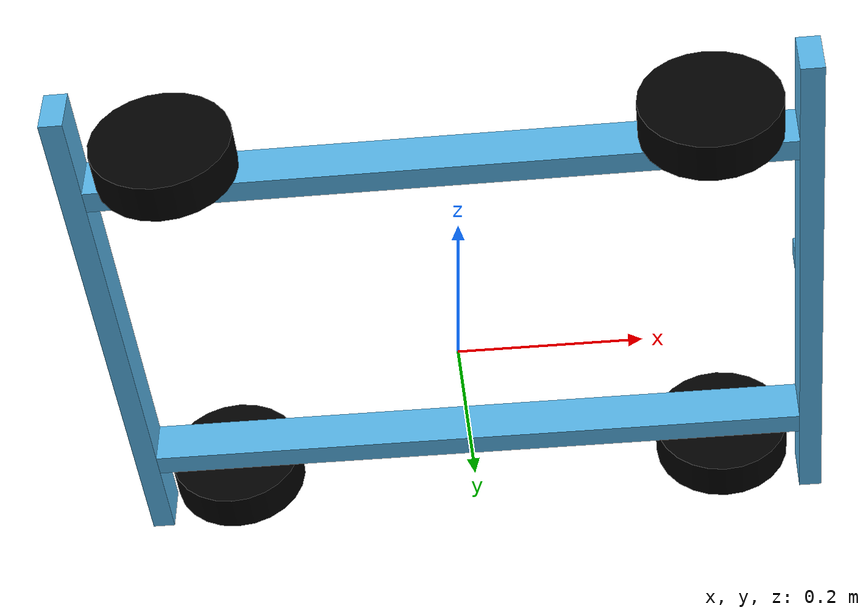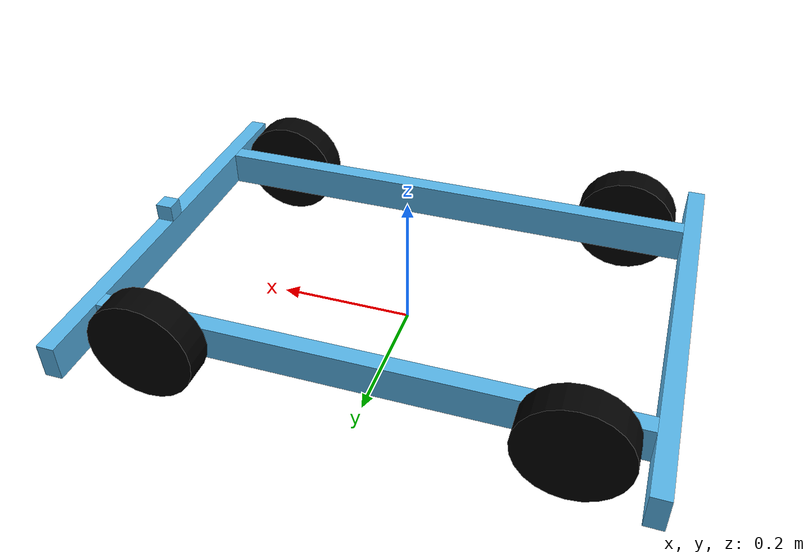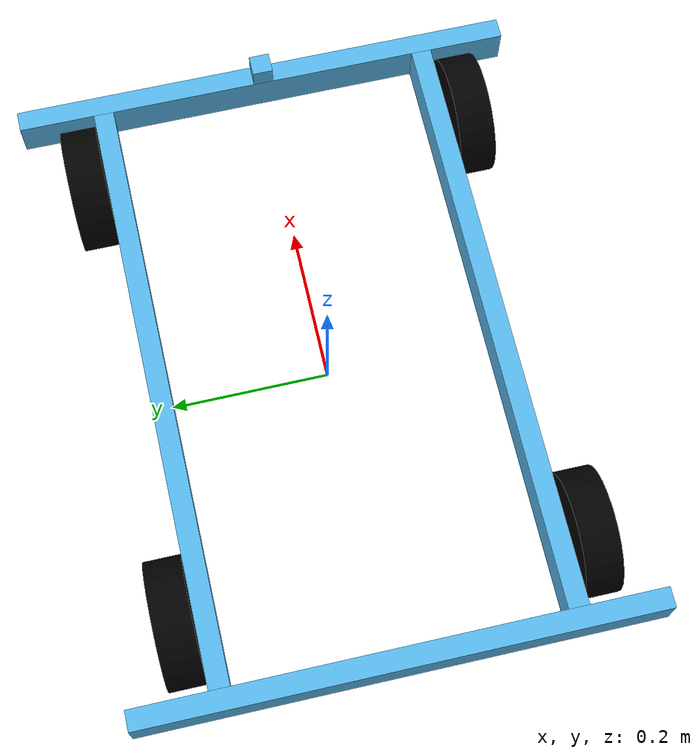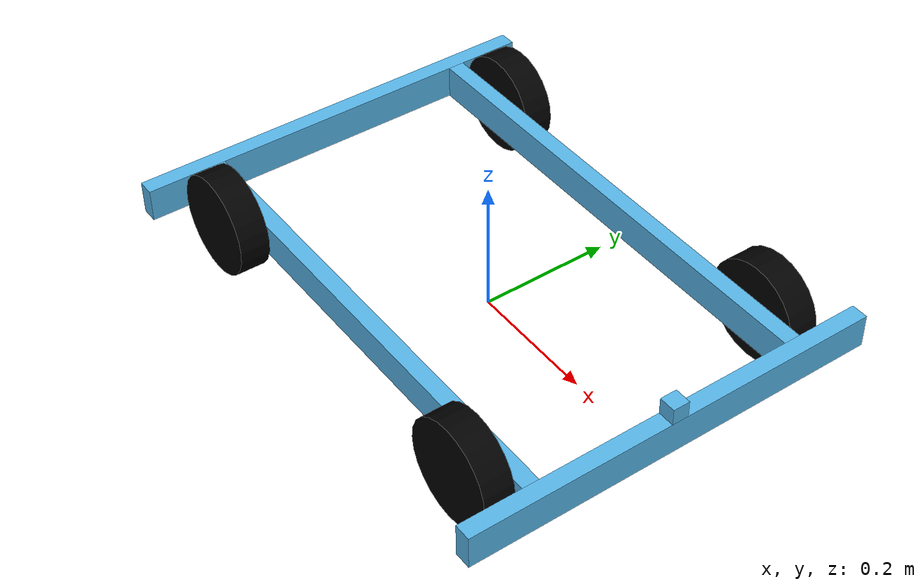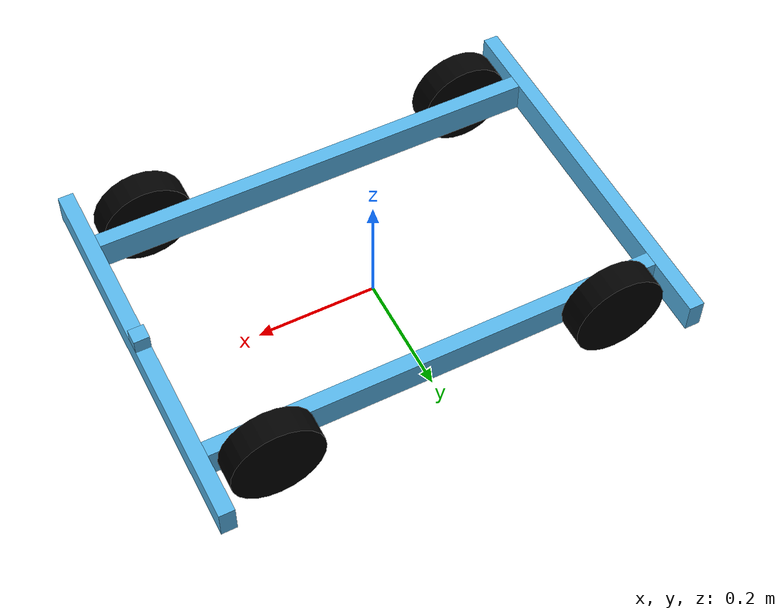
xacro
<?xml version="1.0"?>
<robot name="robot" xmlns:xacro="http://www.ros.org/wiki/xacro">

  <!-- Load simulated or real hardware interfaces -->
  <xacro:arg name="is_sim" default="true"/>

  <!-- Include Gazebo parameters -->
  <xacro:include filename="$(find robomagellan_description)/urdf/gazebo.xacro"/>

  <!-- Include ros2_contol plugins/interfaces -->
  <xacro:include filename="$(find robomagellan_description)/urdf/ros2_control.xacro"/>

  <!-- Inertial Macros -->
  <xacro:macro name="inertial_box" params="mass x y z">
    <inertial>
      <mass value="${mass}"/>
      <inertia ixx="${(1/12) * mass * (y*y+z*z)}" ixy="0.0" ixz="0.0"
               iyy="${(1/12) * mass * (x*x+z*z)}" iyz="0.0"
               izz="${(1/12) * mass * (x*x+y*y)}"/>
    </inertial>
  </xacro:macro>

  <!-- Wheels are rotated 90 degrees about x-axis -->
  <xacro:macro name="inertial_cylinder" params="mass radius height">
    <inertial>
      <mass value="${mass}"/>
      <inertia ixx="${(1/12) * mass * (3*radius*radius + height*height)}" ixy="0.0" ixz="0.0"
               iyy="${(1/2) * mass * (radius*radius)}" iyz="0.0"
               izz="${(1/12) * mass * (3*radius*radius + height*height)}"/>
    </inertial>
  </xacro:macro>

  <xacro:property name="sidebar_length" value="0.7493"/>
  <xacro:property name="sidebar_width" value="0.0254"/>
  <xacro:property name="sidebar_height" value="0.0508"/>
  <xacro:property name="sidebar_y_offset" value="0.20955"/>

  <xacro:property name="frontbar_length" value="0.635"/>
  <xacro:property name="frontbar_width" value="0.0254"/>
  <xacro:property name="frontbar_height" value="0.0508"/>
  <xacro:property name="frontbar_x_offset" value="0.38735"/>

  <xacro:property name="wheel_radius" value="0.0762"/>
  <xacro:property name="wheel_width" value="0.045085"/>
  <xacro:property name="wheel_mass" value="0.36196671"/>
  <xacro:property name="wheel_x_offset" value="0.28575"/>
  <xacro:property name="wheel_y_offset" value="0.2447925"/>

  <xacro:property name="robot_mass" value="1.0"/>

  <!-- Macro to create the side bars -->
  <xacro:macro name="sidebar" params="prefix reflect">
    <visual name="${prefix}_side_visual">
      <origin xyz="0 ${sidebar_y_offset*reflect} 0" rpy="0 0 0"/>
      <geometry>
        <box size="${sidebar_length} ${sidebar_width} ${sidebar_height}"/>
      </geometry>
    </visual>
    <collision name="${prefix}_side_collision">
      <origin xyz="0 ${sidebar_y_offset*reflect} 0" rpy="0 0 0"/>
      <geometry>
        <box size="${sidebar_length} ${sidebar_width} ${sidebar_height}"/>
      </geometry>
    </collision>
  </xacro:macro>

  <!-- Macro to create the front/rear bars -->
  <xacro:macro name="frontbar" params="prefix reflect">
    <visual name="${prefix}_visual">
      <origin xyz="${frontbar_x_offset*reflect} 0 0" rpy="0 0 1.5708"/>
      <geometry>
        <box size="${frontbar_length} ${frontbar_width} ${frontbar_height}"/>
      </geometry>
    </visual>
    <collision name="${prefix}_collision">
      <origin xyz="${frontbar_x_offset*reflect} 0 0" rpy="0 0 1.5708"/>
      <geometry>
        <box size="${frontbar_length} ${frontbar_width} ${frontbar_height}"/>
      </geometry>
    </collision>
  </xacro:macro>

  <!-- Macro to create the wheels -->
  <xacro:macro name="wheel" params="prefix suffix reflectx reflecty mimic_wheel">
    <link name="${prefix}_${suffix}_wheel">
      <xacro:inertial_cylinder mass="${wheel_mass}" height="${wheel_width}" radius="${wheel_radius}"/>
      <visual>
        <origin xyz="0 0 0" rpy="${-reflecty*pi/2} 0 0"/>
        <geometry>
          <cylinder length="${wheel_width}" radius="${wheel_radius}"/>
        </geometry>
       <material name="black"/>
      </visual>
      <collision>
        <origin xyz="0 0 0" rpy="${-reflecty*pi/2} 0 0"/>
        <!-- Use a sphere for collisions to have one ground contact point -->
        <geometry>
          <sphere radius="${wheel_radius}"/>
        </geometry>
      </collision>
    </link>

    <!-- Joint connecting this wheel to the base_link -->
    <joint name="${prefix}_${suffix}_joint" type="continuous">
      <origin xyz="${reflectx*wheel_x_offset} ${reflecty*wheel_y_offset} 0" rpy="0 0 0"/>
      <parent link="base_link"/>
      <child link="${prefix}_${suffix}_wheel"/>
      <axis xyz="0 1 0"/>

      <!-- Is this a mimic wheel? -->
      <xacro:if value="${mimic_wheel}">
        <mimic joint="${prefix}_front_joint" multiplier="1.0" offset="0.0"/>
      </xacro:if>
    </joint>
  </xacro:macro>

  <material name="black">
    <color rgba="0 0 0 1"/>
  </material>

  <!-- Base Footprint Link.  This is the 2D ground projection of base_link -->
  <link name="base_footprint"/>

  <!-- Base link represented by a 50 lbs cuboid (max weight limit) -->
  <link name="base_link">
    <!-- Left/Right sidebars -->
    <xacro:sidebar prefix="left" reflect="1"/>
    <xacro:sidebar prefix="right" reflect="-1"/>

    <!-- Front/Rear bars -->
    <xacro:frontbar prefix="front" reflect="1"/>
    <xacro:frontbar prefix="rear" reflect="-1"/>

    <!--
      For visualization purposes a small cube will be added to the front of the
      robot.  No collision is used because the real robot does not have this
      cube.
    -->
    <visual name="cube_visual">
      <geometry>
        <box size="0.0254 0.0254 0.0254"/>
      </geometry>
      <origin rpy="0 0 0" xyz="0.38735 0 0.0381"/>
    </visual>

    <xacro:inertial_box mass="${robot_mass}" x="${sidebar_length+2*frontbar_width}" y="${frontbar_length}" z="${sidebar_height}"/>
  </link>

  <!-- Attach base_link to base_footprint -->
  <joint name="base_joint" type="fixed">
    <parent link="base_footprint"/>
    <child link="base_link"/>
    <!-- base_link is center of the chassis, so need to shift +Z by wheel radius -->
    <origin xyz="0 0 ${wheel_radius}" rpy="0 0 0"/>
  </joint>

  <!-- Wheels -->
  <xacro:wheel prefix="left" suffix="front" reflectx="1" reflecty="1" mimic_wheel="false"/>
  <xacro:wheel prefix="left" suffix="rear" reflectx="-1" reflecty="1" mimic_wheel="true"/>

  <xacro:wheel prefix="right" suffix="front" reflectx="1" reflecty="-1" mimic_wheel="false"/>
  <xacro:wheel prefix="right" suffix="rear" reflectx="-1" reflecty="-1" mimic_wheel="true"/>

  <!-- Simulated IMU (centered on robot's origin) -->
  <link name="imu_link">
    <inertial>
      <origin xyz="0 0 0" rpy="0 0 0"/>
      <mass value="0.0005"/>

      <!-- TODO: Need dimensions of IMU -->
      <inertia ixx="1.46176048428261E-08" ixy="1.40015117949421E-10" ixz="-1.9963387293740E-12" iyy="8.59662482954888E-09" iyz="7.52375112767959E-12" izz="2.30279421279312E-08" />
    </inertial>

    <visual>
      <origin xyz="0 0 0" rpy="0 0 0"/>
      <geometry>
        <!-- TODO: Need dimensions of IMU -->
        <box size="0.001 0.001 0.001"/>
      </geometry>
    </visual>

    <collision>
      <origin xyz="0 0 0" rpy="0 0 0"/>
      <geometry>
        <!-- TODO: Need dimensions of IMU -->
        <box size="0.001 0.001 0.001"/>
      </geometry>
    </collision>
  </link>

  <joint name="imu_joint" type="fixed">
    <origin xyz="0 0 0" rpy="0 0 0"/>
    <parent link="base_link"/>
    <child link="imu_link"/>
    <axis xyz="0 0 0"/>
  </joint>
</robot>
